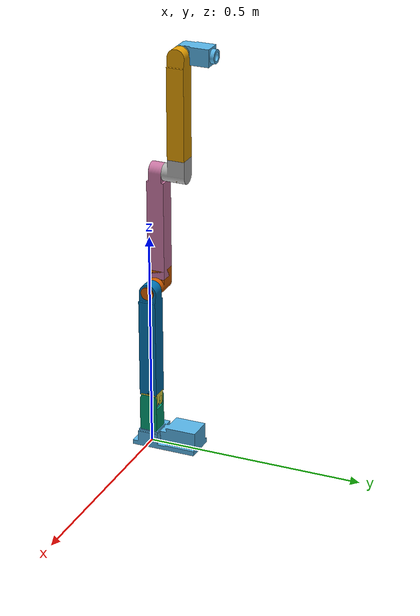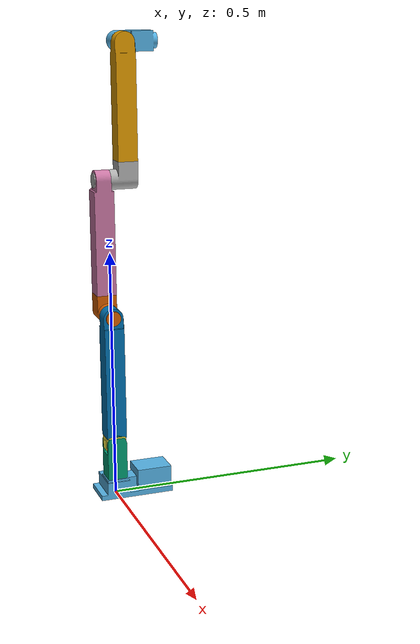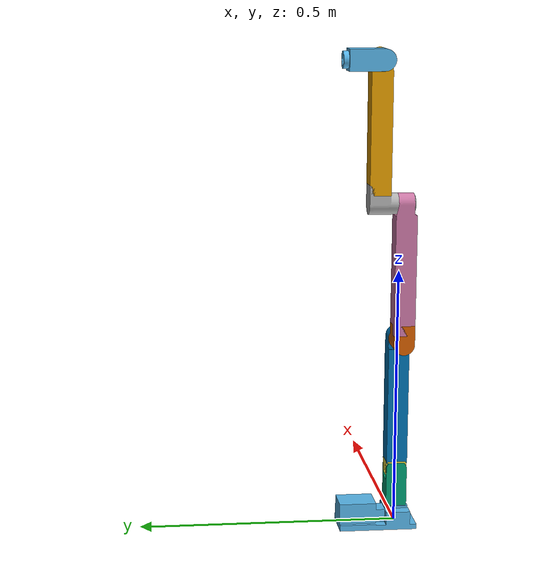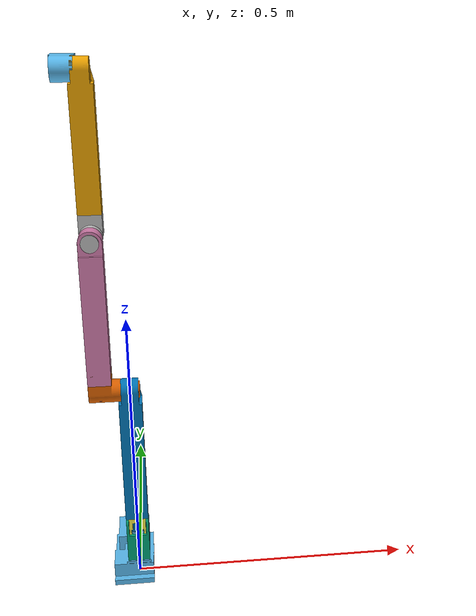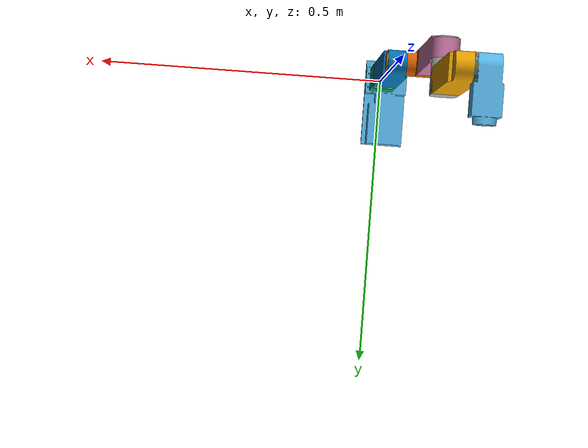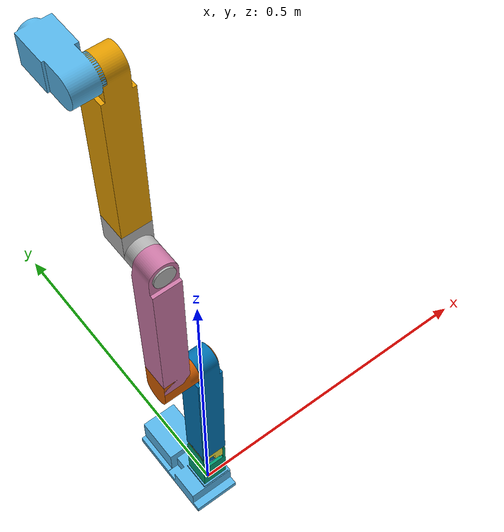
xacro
<?xml version="1.0"?>
<robot name="MantisStandalone" xmlns:xacro="http://ros.org/wiki/xacro">
	<link name="world"/>
	<xacro:include filename="$(find mantis_sim)/urdf/model.urdf.xacro" />
    <xacro:mantis_arm parent="world">
        <origin xyz="0 0 0" rpy="0 0 0" />
    </xacro:mantis_arm>
</robot>

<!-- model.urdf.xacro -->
<root  xmlns:sensor="http://playerstage.sourceforge.net/gazebo/xmlschema/#sensor"
 xmlns:controller="http://playerstage.sourceforge.net/gazebo/xmlschema/#controller"
 xmlns:interface="http://playerstage.sourceforge.net/gazebo/xmlschema/#interface"
 xmlns:xacro="http://ros.org/wiki/xacro"
 name="Mantis">

<!-- =============================================PROPERTIES==================================== -->

	<xacro:property name="offset" value="0.02" />
	<xacro:property name="base_link_main_height" value="0.05058" />
	<xacro:property name="origin_to_elbow" value="0.104282" />
	<xacro:property name="joint_to_link" value="0.024" />
	<xacro:property name="link_length" value="0.1948" />
	<xacro:property name="pi" value="3.1415926535" />

<!-- =============================================MACROS======================================= -->

<!-- MACRO FOR THE ROBOT ARM -->
	<xacro:macro name="mantis_arm" params="parent *origin">

	<xacro:macro name="default_material">
        <mu1>100000</mu1>
        <mu2>100000</mu2>
	 	<kp>100.0</kp>
	 	<kd>0.01</kd>
	</xacro:macro>

	<gazebo reference="_main">
		<material>Gazebo/FlatBlack</material>
		<implicitSpringDamper>1</implicitSpringDamper>
		<xacro:default_material/>
	</gazebo>
	<gazebo reference="_housing">
		<material>Gazebo/Grey</material>
		<implicitSpringDamper>1</implicitSpringDamper>
		<xacro:default_material/>
	</gazebo>

	<xacro:macro name="default_damping_medium">
		<dynamics damping="0.25" friction="0.25"/>
	</xacro:macro>

<!-- Define the Macro for the main link  properties.They are shared by all three links, so we can define it here and use it for each portion. -->
<!-- params="orientation" -->
	<xacro:macro name="main_link" params="orientation">
		<origin xyz="0 0 ${link_length+3*joint_to_link}" rpy="${pi/2} 0 ${orientation}"/>
		<geometry>
			<mesh filename="package://mantis_sim/mesh/B2.dae"/>
		</geometry>
	</xacro:macro>

	<xacro:macro name="inertia_main_link" >
		<inertial>
			<mass value=".1155"/>
			<inertia ixx="0.00181" ixy="-0.3385E-6" ixz="-.00005688" iyy=".00781" iyz=".117E-5" izz="0.00008"/>
		</inertial>
	</xacro:macro>

<!-- Define the Macros for the joint housing mass properties. There exists 2 replica sets of joint housings, so we can define them here and use it for each portion. We can do the same for their meshes-->
	<xacro:macro name="joint_link" >
		<origin xyz="0 ${2.5*offset} 0" rpy="0 ${pi} ${pi}" />
		<geometry>
			<mesh filename="package://mantis_sim/mesh/B3.dae"/>
		</geometry>
	</xacro:macro>

	<xacro:macro name="inertia_joint" >
		<inertial>
			<mass value=".146"/>
			<inertia ixx="0.0000306" ixy="0.62908934773947E-14" ixz="0.62908934773947E-14" iyy="0.0000495" iyz="0.62908934773947E-14" izz="0.0000443"/>
		</inertial>
	</xacro:macro>

<!-- =========================================LINKS============================================= -->

<!-- Housing for the First Joint  -->
	<link name="base_link_main">
		<visual>
			<origin rpy="0.0 0.0 0.0" xyz="0 0 0.03"/>
			<geometry>
				<mesh filename="package://mantis_sim/mesh/B0.dae"/>
			</geometry>
		</visual>
		<inertial>
			<mass value="0.4004"/>
			<inertia ixx="0.0010733" ixy="-0.0000654" ixz="0.0001079" iyy="0.0012394" iyz="-0.000053" izz="0.0003487"/>
		</inertial>
	</link>

	<link name="base_roll_housing">
		<visual>
			<origin rpy="0 0 0" xyz="0 0 0.02"/>
			<geometry>
				<mesh filename="package://mantis_sim/mesh/B1.dae"/>
			</geometry>
		</visual>
		<inertial>
			<mass value="0.064"/>
			<inertia ixx="0.00116" ixy="-1.62908934773947E-14" ixz="-1.62908934773947E-14" iyy="0.0115" iyz="-1.62908934773947E-14" izz="0.0094"/>
		</inertial>
	</link>

<!-- =======================
Link 1
======================= -->

	<link name="base_elbow">
		<visual>
			<origin rpy="0 ${pi/2} 0" xyz="-${offset} -${offset} ${offset}"/>
			<geometry>
				<mesh filename="package://mantis_sim/mesh/base_elbow.dae"/>
			</geometry>
		</visual>
		<inertial>
			<mass value="0.0386"/>
			<inertia ixx="0.00116" ixy="-1.62908934773947E-14" ixz="-1.62908934773947E-14" iyy="0.0115" iyz="-1.62908934773947E-14" izz="0.000094"/>
		</inertial>
	</link>

	<link name="link_one_main">
		<visual>
			<xacro:main_link orientation="0"/>
		</visual>
		<xacro:inertia_main_link/>
	</link>

<!-- =======================
Housing for Joint 2
======================= -->

	<link name="joint_two_housing">
		<visual>
			<xacro:joint_link/>
		</visual>
		<xacro:inertia_joint/>
	</link>

<!-- =======================
Link 2
======================= -->

	<link name="link_two_main">
		<visual>
			<xacro:main_link orientation="1.5707963"/>
		</visual>
		<xacro:inertia_main_link/>
	</link>

<!-- ==================
Housing for Joint 3
======================= -->

	<link name="joint_three_housing">
		<collision>
			<xacro:joint_link/>
		</collision>
		<visual>
			<xacro:joint_link/>
		</visual>
		<xacro:inertia_joint/>
	</link>

<!-- =======================
Link 3
======================= -->

	<link name="link_three_main">
		<visual>
			<xacro:main_link orientation="1.5707963"/>
		</visual>
		<xacro:inertia_main_link/>
	</link>

<!-- =======================
Housing for Wrist Joint
======================= -->

	<link name="wrist_attach_point">
		<collision>
			<origin rpy="0 ${pi/2} ${pi/2}" xyz="0 ${1.5*offset} 0"/>
			<geometry>
				<mesh filename="package://mantis_sim/mesh/B8.dae"/>
			</geometry>
		</collision>
		<visual>
			<origin rpy="0 ${pi/2} ${pi/2}" xyz="0 ${1.5*offset} 0"/>
			<geometry>
				<mesh filename="package://mantis_sim/mesh/B8.dae"/>
			</geometry>
		</visual>
		<inertial>
			<mass value=".0184764"/>
			<inertia ixx="0.0052" ixy="1.62908934773947E-14" ixz="1.62908934773947E-14" iyy="0.0084" iyz="0.017" izz="0.0052"/>
		</inertial>
	</link>

<!-- =========================================JOINTS============================================ -->

<!-- roll 1 -->

<joint name="roll_1" type="continuous">
 	<xacro:default_damping_medium/>
	<axis xyz="0 0 1"/>
	<origin rpy="0 0 ${pi/2}" xyz="0 0 0"/>
	<parent link="base_link_main"/>
	<child link="base_roll_housing"/>
</joint>

<transmission name="roll_trans_1">
	<type>transmission_interface/SimpleTransmission</type>
	<joint name="roll_1">
		<hardwareInterface>EffortJointInterface</hardwareInterface>
	</joint>
	<actuator name="roll_mot_1">
		<hardwareInterface>EffortJointInterface</hardwareInterface>
	</actuator>
</transmission>

<!-- Elbow 1 -->
<joint name="elbow_1" type="revolute">
 	<xacro:default_damping_medium/>
	<axis xyz="0 1 0"/>
	<limit effort="1000.0" lower="-${pi}" upper="${pi}" velocity="0.25"/>
	<origin rpy="0 0 0" xyz="0 0 ${origin_to_elbow}"/>
	<parent link="base_roll_housing"/>
	<child link="base_elbow"/>
</joint>

<transmission name="elbow_trans_1">
	<type>transmission_interface/SimpleTransmission</type>
	<joint name="elbow_1">
		<hardwareInterface>EffortJointInterface</hardwareInterface>
	</joint>
	<actuator name="elbow_mot_1">
		<hardwareInterface>EffortJointInterface</hardwareInterface>
	</actuator>
</transmission>

<!-- Link 1 -->

<joint name="link_1_A" type="fixed">
	<parent link="base_elbow"/>
	<child link="link_one_main"/>
</joint>

<!-- Elbow 2 -->

<joint name="elbow_2" type="revolute">
 	<xacro:default_damping_medium/>
	<axis xyz="0 1 0"/>
	<limit effort="1000.0" lower="-${pi}" upper="${pi}" velocity="0.25"/>
	<origin rpy="0 0 0" xyz="0 0 ${link_length+3*joint_to_link}"/>
	<parent link="link_one_main"/>
	<child link="joint_two_housing"/>
</joint>

<transmission name="elbow_trans_2">
	<type>transmission_interface/SimpleTransmission</type>
	<joint name="elbow_2">
		<hardwareInterface>EffortJointInterface</hardwareInterface>
	</joint>
	<actuator name="elbow_mot_2">
		<hardwareInterface>EffortJointInterface</hardwareInterface>
	</actuator>
</transmission>

<!-- roll 2 -->

<joint name="roll_2" type="continuous">
 	<xacro:default_damping_medium/>
	<axis xyz="0 0 1"/>
	<origin rpy="0 0 0" xyz="0 ${2.5*offset} 0"/>
	<parent link="joint_two_housing"/>
	<child link="link_two_main"/>
</joint>

<transmission name="roll_trans_2">
	<type>transmission_interface/SimpleTransmission</type>
	<joint name="roll_2">
		<hardwareInterface>EffortJointInterface</hardwareInterface>
	</joint>
	<actuator name="roll_mot_2">
		<hardwareInterface>EffortJointInterface</hardwareInterface>
	</actuator>
</transmission>

<!-- Elbow 3 -->

<joint name="elbow_3" type="revolute">
 	<xacro:default_damping_medium/>
	<axis xyz="0 1 0"/>
	<limit effort="1000.0" lower="-${pi}" upper="${pi}" velocity="0.25"/>
	<origin rpy="0 0 -${pi/2}" xyz="0 0 ${link_length+3*joint_to_link}"/>
	<parent link="link_two_main"/>
	<child link="joint_three_housing"/>
</joint>

<transmission name="elbow_trans_3">
	<type>transmission_interface/SimpleTransmission</type>
	<joint name="elbow_3">
		<hardwareInterface>EffortJointInterface</hardwareInterface>
	</joint>
	<actuator name="elbow_mot_3">
		<hardwareInterface>EffortJointInterface</hardwareInterface>
	</actuator>
</transmission>

<!-- roll 3 -->

<joint name="roll_3" type="continuous">
 	<xacro:default_damping_medium/>
	<axis xyz="0 0 1"/>
	<origin rpy="0 0 0" xyz="0 ${2.5*offset} 0"/>
	<parent link="joint_three_housing"/>
	<child link="link_three_main"/>
</joint>

<transmission name="roll_trans_3">
	<type>transmission_interface/SimpleTransmission</type>
	<joint name="roll_3">
		<hardwareInterface>EffortJointInterface</hardwareInterface>
	</joint>
	<actuator name="roll_mot_3">
		<hardwareInterface>EffortJointInterface</hardwareInterface>
	</actuator>
</transmission>

<!-- Wrist -->

<joint name="wrist" type="revolute">
 	<xacro:default_damping_medium/>
	<axis xyz="0 1 0"/>
	<limit effort="1000.0" lower="-${pi}" upper="0" velocity="0.25"/>
	<origin rpy="0 0 ${pi/2}" xyz="0 0 ${link_length+3*joint_to_link}"/>
	<parent link="link_three_main"/>
	<child link="wrist_attach_point"/>
</joint>

<transmission name="wrist_trans">
	<type>transmission_interface/SimpleTransmission</type>
	<joint name="wrist">
		<hardwareInterface>EffortJointInterface</hardwareInterface>
	</joint>
	<actuator name="wrist_mot">
		<hardwareInterface>EffortJointInterface</hardwareInterface>
	</actuator>
</transmission>

<!-- GAZEBO SPECIFIC ADD ONS   -->

<!-- ROS_Control Plugin for Gazebo   -->
<gazebo>
	<plugin name="gazebo_ros_control" filename="libgazebo_ros_control.so">
		<robotNamespace>/mantis</robotNamespace>
	</plugin>
</gazebo>

     <joint name="mantis_arm_joint" type="fixed">
		<xacro:insert_block name="origin" />
		<parent link="${parent}" />
        <child link="base_link_main" />
	</joint>
</xacro:macro>
</root>
